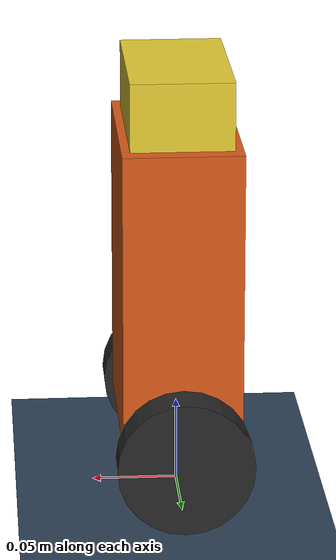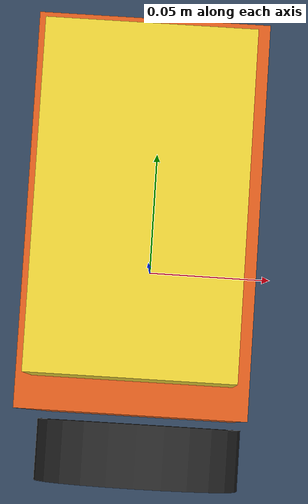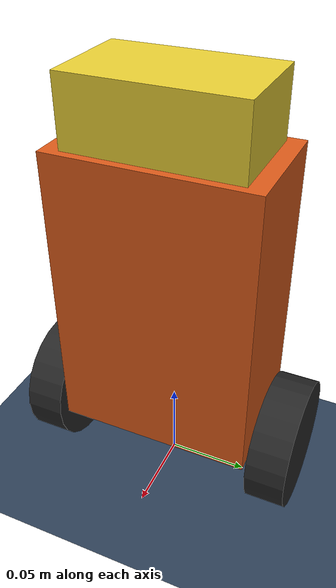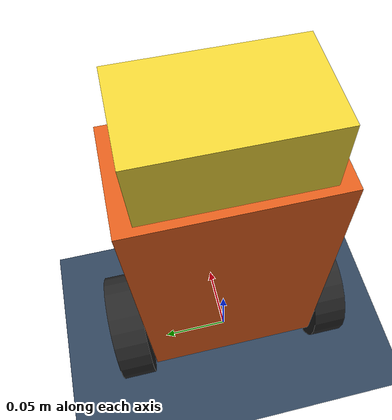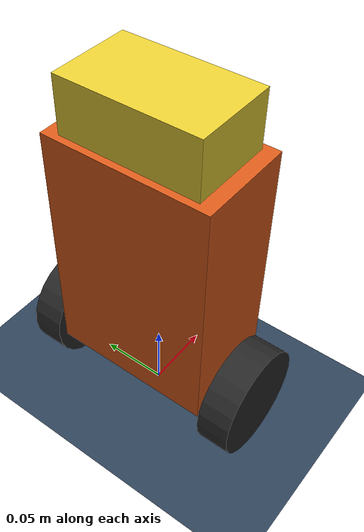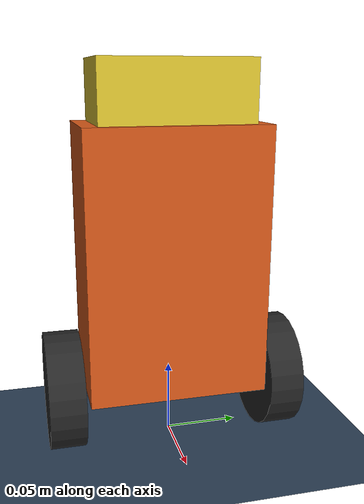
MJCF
<mujoco model="two_wheel_balancer">
  <!-- A hobby-scale two-wheel self-balancing robot, matching the build described in
       references/control-and-stability.md: ~0.7 kg, 40 mm wheels, TT-motor-class torque. -->
  <option timestep="0.002" gravity="0 0 -9.81"/>

  <visual>
    <headlight ambient="0.4 0.4 0.4" diffuse="0.6 0.6 0.6"/>
    <global offwidth="640" offheight="480"/>
  </visual>

  <asset>
    <texture name="grid" type="2d" builtin="checker" width="256" height="256"
             rgb1="0.2 0.3 0.4" rgb2="0.15 0.2 0.28"/>
    <material name="grid" texture="grid" texrepeat="6 6" reflectance="0.1"/>
    <material name="chassis" rgba="0.85 0.35 0.1 1"/>
    <material name="wheel" rgba="0.15 0.15 0.15 1"/>
    <material name="head" rgba="0.9 0.8 0.2 1"/>
  </asset>

  <worldbody>
    <geom name="floor" type="plane" size="6 6 0.1" material="grid" friction="1.0 0.005 0.0001"/>
    <light pos="0 -1 2" dir="0 0.4 -1" diffuse="0.8 0.8 0.8"/>

    <!-- Chassis: axle sits at wheel-center height (z = wheel radius). -->
    <body name="chassis" pos="0 0 0.04">
      <freejoint name="root"/>
      <!-- Body is a tall box whose center of mass sits above the axle (inverted pendulum). -->
      <geom name="body" type="box" size="0.035 0.06 0.09" pos="0 0 0.09"
            mass="0.55" material="chassis"/>
      <!-- "IMU/battery" block up top raises CoM — slower fall, easier to balance, like a real build. -->
      <geom name="head" type="box" size="0.03 0.05 0.02" pos="0 0 0.20"
            mass="0.15" material="head"/>
      <site name="imu" pos="0 0 0.09"/>

      <body name="left_wheel" pos="0 0.075 0">
        <joint name="left_axle" type="hinge" axis="0 1 0" damping="0.0005"/>
        <geom type="cylinder" size="0.04 0.012" quat="0.707107 0.707107 0 0"
              mass="0.05" material="wheel" friction="1.2 0.005 0.0001"/>
      </body>
      <body name="right_wheel" pos="0 -0.075 0">
        <joint name="right_axle" type="hinge" axis="0 1 0" damping="0.0005"/>
        <geom type="cylinder" size="0.04 0.012" quat="0.707107 0.707107 0 0"
              mass="0.05" material="wheel" friction="1.2 0.005 0.0001"/>
      </body>
    </body>
  </worldbody>

  <actuator>
    <!-- TT-motor-class torque limits (~0.35 N·m at the wheel). -->
    <motor name="left_motor"  joint="left_axle"  ctrlrange="-0.35 0.35"/>
    <motor name="right_motor" joint="right_axle" ctrlrange="-0.35 0.35"/>
  </actuator>

  <sensor>
    <gyro name="gyro" site="imu"/>
    <accelerometer name="accel" site="imu"/>
  </sensor>
</mujoco>
